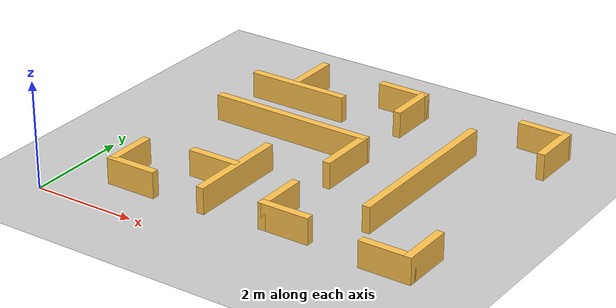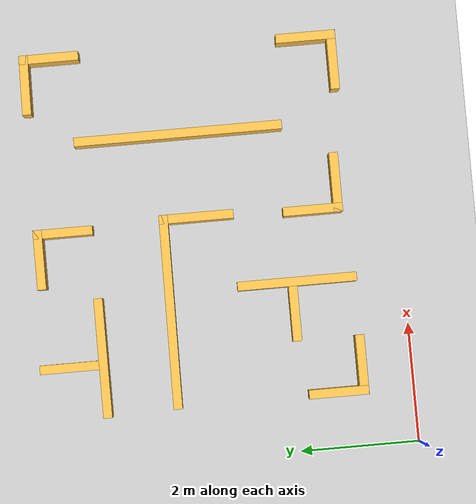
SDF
<sdf version="1.4">
  <world name="default">

    <scene>
      <ambient>0.4 0.4 0.4 1</ambient>
      <background>0.7 0.7 0.7 1</background>
      <shadows>true</shadows>
    </scene>

    <!-- A global light source -->
    <include>
      <uri>model://sun</uri>
    </include>

    <!-- A ground plane -->
    <include>
      <uri>model://ground_plane</uri>
    </include>

    <!-- Map 1 which has been copied to Gazebo models dir -->
    <include>
      <uri>model://map1</uri>
	    <pose> 3.943 3.508 0 0 0 1.57079633</pose>
    </include>

    <physics type="ode">
      <real_time_update_rate>1000.0</real_time_update_rate>
      <max_step_size>0.001</max_step_size>
      <real_time_factor>1</real_time_factor>
      <ode>
        <solver>
          <type>quick</type>
          <iters>150</iters>
          <precon_iters>0</precon_iters>
          <sor>1.400000</sor>
          <use_dynamic_moi_rescaling>1</use_dynamic_moi_rescaling>
        </solver>
        <constraints>
          <cfm>0.00001</cfm>
          <erp>0.2</erp>
          <contact_max_correcting_vel>2000.000000</contact_max_correcting_vel>
          <contact_surface_layer>0.01000</contact_surface_layer>
        </constraints>
      </ode>
    </physics>
  </world>

</sdf>

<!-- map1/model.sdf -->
<sdf version='1.6'>
  <model name='map1'>
    <pose frame=''>-0.155 0.186877 0 0 -0 0</pose>
    <link name='Wall_10'>
      <collision name='Wall_10_Collision'>
        <geometry>
          <box>
            <size>2 0.15 0.5</size>
          </box>
        </geometry>
        <pose frame=''>0 0 0.25 0 -0 0</pose>
      </collision>
      <visual name='Wall_10_Visual'>
        <pose frame=''>0 0 0.25 0 -0 0</pose>
        <geometry>
          <box>
            <size>2 0.15 0.5</size>
          </box>
        </geometry>
        <material>
          <script>
            <uri>file://media/materials/scripts/gazebo.material</uri>
            <name>Gazebo/Grey</name>
          </script>
          <ambient>1 0.764706 0.305882 1</ambient>
        </material>
        <meta>
          <layer>0</layer>
        </meta>
      </visual>
      <pose frame=''>-1.685 1.09112 0 0 -0 0</pose>
    </link>
    <link name='Wall_14'>
      <collision name='Wall_14_Collision'>
        <geometry>
          <box>
            <size>1 0.15 0.5</size>
          </box>
        </geometry>
        <pose frame=''>0 0 0.25 0 -0 0</pose>
      </collision>
      <visual name='Wall_14_Visual'>
        <pose frame=''>0 0 0.25 0 -0 0</pose>
        <geometry>
          <box>
            <size>1 0.15 0.5</size>
          </box>
        </geometry>
        <material>
          <script>
            <uri>file://media/materials/scripts/gazebo.material</uri>
            <name>Gazebo/Grey</name>
          </script>
          <ambient>1 0.764706 0.305882 1</ambient>
        </material>
        <meta>
          <layer>0</layer>
        </meta>
      </visual>
      <pose frame=''>-1.608 1.58712 0 0 -0 -1.5708</pose>
    </link>
    <link name='Wall_16'>
      <collision name='Wall_16_Collision'>
        <geometry>
          <box>
            <size>1 0.15 0.5</size>
          </box>
        </geometry>
        <pose frame=''>0 0 0.25 0 -0 0</pose>
      </collision>
      <visual name='Wall_16_Visual'>
        <pose frame=''>0 0 0.25 0 -0 0</pose>
        <geometry>
          <box>
            <size>1 0.15 0.5</size>
          </box>
        </geometry>
        <material>
          <script>
            <uri>file://media/materials/scripts/gazebo.material</uri>
            <name>Gazebo/Grey</name>
          </script>
          <ambient>1 0.764706 0.305882 1</ambient>
        </material>
        <meta>
          <layer>0</layer>
        </meta>
      </visual>
      <pose frame=''>-2.645 2.56912 0 0 -0 1.5708</pose>
    </link>
    <link name='Wall_17'>
      <collision name='Wall_17_Collision'>
        <geometry>
          <box>
            <size>1 0.15 0.5</size>
          </box>
        </geometry>
        <pose frame=''>0 0 0.25 0 -0 0</pose>
      </collision>
      <visual name='Wall_17_Visual'>
        <pose frame=''>0 0 0.25 0 -0 0</pose>
        <geometry>
          <box>
            <size>1 0.15 0.5</size>
          </box>
        </geometry>
        <material>
          <script>
            <uri>file://media/materials/scripts/gazebo.material</uri>
            <name>Gazebo/Grey</name>
          </script>
          <ambient>1 0.764706 0.305882 1</ambient>
        </material>
        <meta>
          <layer>0</layer>
        </meta>
      </visual>
      <pose frame=''>-2.22 2.99412 0 0 -0 0</pose>
    </link>
    <link name='Wall_20'>
      <collision name='Wall_20_Collision'>
        <geometry>
          <box>
            <size>1.25017 0.15 0.5</size>
          </box>
        </geometry>
        <pose frame=''>0 0 0.25 0 -0 0</pose>
      </collision>
      <visual name='Wall_20_Visual'>
        <pose frame=''>0 0 0.25 0 -0 0</pose>
        <geometry>
          <box>
            <size>1.25017 0.15 0.5</size>
          </box>
        </geometry>
        <material>
          <script>
            <uri>file://media/materials/scripts/gazebo.material</uri>
            <name>Gazebo/Grey</name>
          </script>
          <ambient>1 0.764706 0.305882 1</ambient>
        </material>
        <meta>
          <layer>0</layer>
        </meta>
      </visual>
      <pose frame=''>-0.098 -0.132877 0 0 -0 0</pose>
    </link>
    <link name='Wall_21'>
      <collision name='Wall_21_Collision'>
        <geometry>
          <box>
            <size>3.25 0.15 0.5</size>
          </box>
        </geometry>
        <pose frame=''>0 0 0.25 0 -0 0</pose>
      </collision>
      <visual name='Wall_21_Visual'>
        <pose frame=''>0 0 0.25 0 -0 0</pose>
        <geometry>
          <box>
            <size>3.25 0.15 0.5</size>
          </box>
        </geometry>
        <material>
          <script>
            <uri>file://media/materials/scripts/gazebo.material</uri>
            <name>Gazebo/Grey</name>
          </script>
          <ambient>1 0.764706 0.305882 1</ambient>
        </material>
        <meta>
          <layer>0</layer>
        </meta>
      </visual>
      <pose frame=''>0.465 1.41712 0 0 -0 1.56241</pose>
    </link>
    <link name='Wall_23'>
      <collision name='Wall_23_Collision'>
        <geometry>
          <box>
            <size>1 0.15 0.5</size>
          </box>
        </geometry>
        <pose frame=''>0 0 0.25 0 -0 0</pose>
      </collision>
      <visual name='Wall_23_Visual'>
        <pose frame=''>0 0 0.25 0 -0 0</pose>
        <geometry>
          <box>
            <size>1 0.15 0.5</size>
          </box>
        </geometry>
        <material>
          <script>
            <uri>file://media/materials/scripts/gazebo.material</uri>
            <name>Gazebo/Grey</name>
          </script>
          <ambient>1 0.764706 0.305882 1</ambient>
        </material>
        <meta>
          <layer>0</layer>
        </meta>
      </visual>
      <pose frame=''>-2.056 -0.083877 0 0 -0 3.14159</pose>
    </link>
    <link name='Wall_24'>
      <collision name='Wall_24_Collision'>
        <geometry>
          <box>
            <size>1 0.15 0.5</size>
          </box>
        </geometry>
        <pose frame=''>0 0 0.25 0 -0 0</pose>
      </collision>
      <visual name='Wall_24_Visual'>
        <pose frame=''>0 0 0.25 0 -0 0</pose>
        <geometry>
          <box>
            <size>1 0.15 0.5</size>
          </box>
        </geometry>
        <material>
          <script>
            <uri>file://media/materials/scripts/gazebo.material</uri>
            <name>Gazebo/Grey</name>
          </script>
          <ambient>1 0.764706 0.305882 1</ambient>
        </material>
        <meta>
          <layer>0</layer>
        </meta>
      </visual>
      <pose frame=''>-2.481 -0.508877 0 0 -0 -1.5708</pose>
    </link>
    <link name='Wall_26'>
      <collision name='Wall_26_Collision'>
        <geometry>
          <box>
            <size>3.5 0.15 0.5</size>
          </box>
        </geometry>
        <pose frame=''>0 0 0.25 0 -0 0</pose>
      </collision>
      <visual name='Wall_26_Visual'>
        <pose frame=''>0 0 0.25 0 -0 0</pose>
        <geometry>
          <box>
            <size>3.5 0.15 0.5</size>
          </box>
        </geometry>
        <material>
          <script>
            <uri>file://media/materials/scripts/gazebo.material</uri>
            <name>Gazebo/Grey</name>
          </script>
          <ambient>1 0.764706 0.305882 1</ambient>
        </material>
        <meta>
          <layer>0</layer>
        </meta>
      </visual>
      <pose frame=''>0.086 -1.55688 0 0 -0 0</pose>
    </link>
    <link name='Wall_29'>
      <collision name='Wall_29_Collision'>
        <geometry>
          <box>
            <size>1 0.15 0.5</size>
          </box>
        </geometry>
        <pose frame=''>0 0 0.25 0 -0 0</pose>
      </collision>
      <visual name='Wall_29_Visual'>
        <pose frame=''>0 0 0.25 0 -0 0</pose>
        <geometry>
          <box>
            <size>1 0.15 0.5</size>
          </box>
        </geometry>
        <material>
          <script>
            <uri>file://media/materials/scripts/gazebo.material</uri>
            <name>Gazebo/Grey</name>
          </script>
          <ambient>1 0.764706 0.305882 1</ambient>
        </material>
        <meta>
          <layer>0</layer>
        </meta>
      </visual>
      <pose frame=''>2.148 -0.064877 0 0 -0 0</pose>
    </link>
    <link name='Wall_31'>
      <collision name='Wall_31_Collision'>
        <geometry>
          <box>
            <size>1 0.15 0.5</size>
          </box>
        </geometry>
        <pose frame=''>0 0 0.25 0 -0 0</pose>
      </collision>
      <visual name='Wall_31_Visual'>
        <pose frame=''>0 0 0.25 0 -0 0</pose>
        <geometry>
          <box>
            <size>1 0.15 0.5</size>
          </box>
        </geometry>
        <material>
          <script>
            <uri>file://media/materials/scripts/gazebo.material</uri>
            <name>Gazebo/Grey</name>
          </script>
          <ambient>1 0.764706 0.305882 1</ambient>
        </material>
        <meta>
          <layer>0</layer>
        </meta>
      </visual>
      <pose frame=''>2.573 0.360123 0 0 -0 1.5708</pose>
    </link>
    <link name='Wall_33'>
      <collision name='Wall_33_Collision'>
        <geometry>
          <box>
            <size>2 0.15 0.5</size>
          </box>
        </geometry>
        <pose frame=''>0 0 0.25 0 -0 0</pose>
      </collision>
      <visual name='Wall_33_Visual'>
        <pose frame=''>0 0 0.25 0 -0 0</pose>
        <geometry>
          <box>
            <size>2 0.15 0.5</size>
          </box>
        </geometry>
        <material>
          <script>
            <uri>file://media/materials/scripts/gazebo.material</uri>
            <name>Gazebo/Grey</name>
          </script>
          <ambient>1 0.764706 0.305882 1</ambient>
        </material>
        <meta>
          <layer>0</layer>
        </meta>
      </visual>
      <pose frame=''>1.656 2.08612 0 0 -0 -1.5708</pose>
    </link>
    <link name='Wall_35'>
      <collision name='Wall_35_Collision'>
        <geometry>
          <box>
            <size>1 0.15 0.5</size>
          </box>
        </geometry>
        <pose frame=''>0 0 0.25 0 -0 0</pose>
      </collision>
      <visual name='Wall_35_Visual'>
        <pose frame=''>0 0 0.25 0 -0 0</pose>
        <geometry>
          <box>
            <size>1 0.15 0.5</size>
          </box>
        </geometry>
        <material>
          <script>
            <uri>file://media/materials/scripts/gazebo.material</uri>
            <name>Gazebo/Grey</name>
          </script>
          <ambient>1 0.764706 0.305882 1</ambient>
        </material>
        <meta>
          <layer>0</layer>
        </meta>
      </visual>
      <pose frame=''>2.22 2.19612 0 0 -0 0</pose>
    </link>
    <link name='Wall_37'>
      <collision name='Wall_37_Collision'>
        <geometry>
          <box>
            <size>1 0.15 0.5</size>
          </box>
        </geometry>
        <pose frame=''>0 0 0.25 0 -0 0</pose>
      </collision>
      <visual name='Wall_37_Visual'>
        <pose frame=''>0 0 0.25 0 -0 0</pose>
        <geometry>
          <box>
            <size>1 0.15 0.5</size>
          </box>
        </geometry>
        <material>
          <script>
            <uri>file://media/materials/scripts/gazebo.material</uri>
            <name>Gazebo/Grey</name>
          </script>
          <ambient>1 0.764706 0.305882 1</ambient>
        </material>
        <meta>
          <layer>0</layer>
        </meta>
      </visual>
      <pose frame=''>-2.615 -2.56888 0 0 -0 -1.5708</pose>
    </link>
    <link name='Wall_38'>
      <collision name='Wall_38_Collision'>
        <geometry>
          <box>
            <size>1 0.15 0.5</size>
          </box>
        </geometry>
        <pose frame=''>0 0 0.25 0 -0 0</pose>
      </collision>
      <visual name='Wall_38_Visual'>
        <pose frame=''>0 0 0.25 0 -0 0</pose>
        <geometry>
          <box>
            <size>1 0.15 0.5</size>
          </box>
        </geometry>
        <material>
          <script>
            <uri>file://media/materials/scripts/gazebo.material</uri>
            <name>Gazebo/Grey</name>
          </script>
          <ambient>1 0.764706 0.305882 1</ambient>
        </material>
        <meta>
          <layer>0</layer>
        </meta>
      </visual>
      <pose frame=''>-2.19 -2.99388 0 0 -0 0</pose>
    </link>
    <link name='Wall_40'>
      <collision name='Wall_40_Collision'>
        <geometry>
          <box>
            <size>0.999592 0.15 0.5</size>
          </box>
        </geometry>
        <pose frame=''>0 0 0.25 0 -0 0</pose>
      </collision>
      <visual name='Wall_40_Visual'>
        <pose frame=''>0 0 0.25 0 -0 0</pose>
        <geometry>
          <box>
            <size>0.999592 0.15 0.5</size>
          </box>
        </geometry>
        <material>
          <script>
            <uri>file://media/materials/scripts/gazebo.material</uri>
            <name>Gazebo/Grey</name>
          </script>
          <ambient>1 0.764706 0.305882 1</ambient>
        </material>
        <meta>
          <layer>0</layer>
        </meta>
      </visual>
      <pose frame=''>2.137 -3.00988 0 0 -0 0</pose>
    </link>
    <link name='Wall_41'>
      <collision name='Wall_41_Collision'>
        <geometry>
          <box>
            <size>1 0.15 0.5</size>
          </box>
        </geometry>
        <pose frame=''>0 0 0.25 0 -0 0</pose>
      </collision>
      <visual name='Wall_41_Visual'>
        <pose frame=''>0 0 0.25 0 -0 0</pose>
        <geometry>
          <box>
            <size>1 0.15 0.5</size>
          </box>
        </geometry>
        <material>
          <script>
            <uri>file://media/materials/scripts/gazebo.material</uri>
            <name>Gazebo/Grey</name>
          </script>
          <ambient>1 0.764706 0.305882 1</ambient>
        </material>
        <meta>
          <layer>0</layer>
        </meta>
      </visual>
      <pose frame=''>2.5695 -2.58488 0 0 -0 1.55315</pose>
    </link>
    <static>1</static>
  </model>
</sdf>
